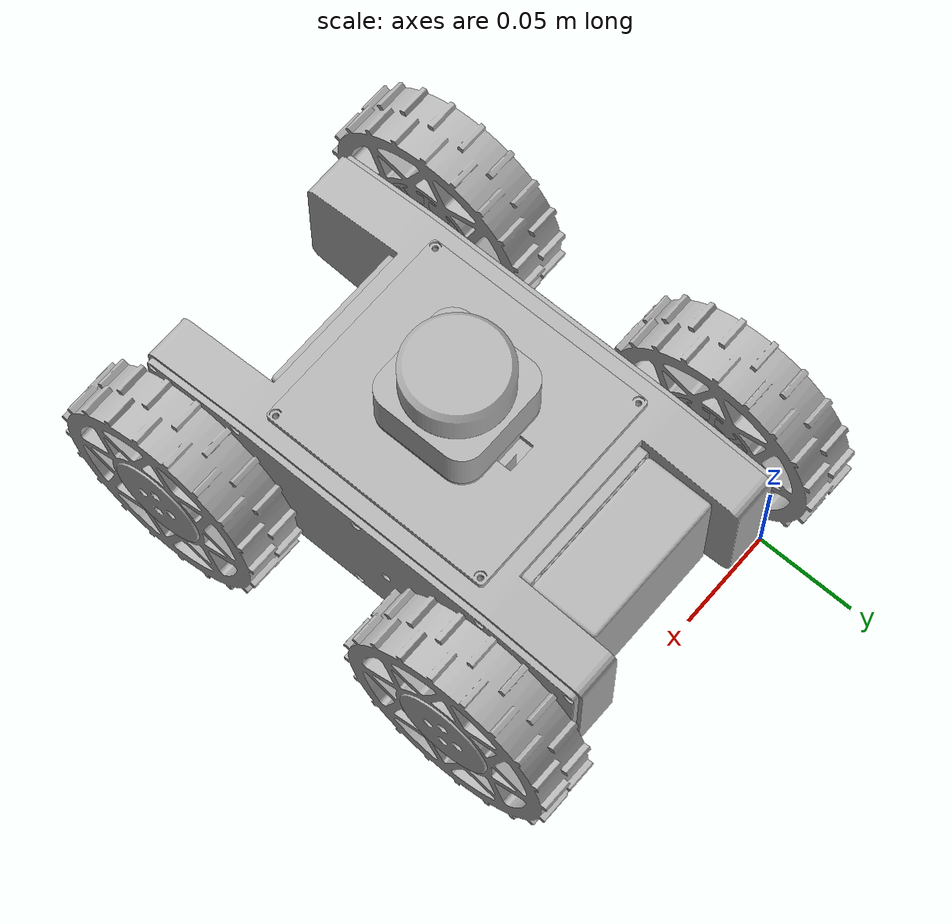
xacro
<?xml version="1.0" ?>
<robot name="tankbot" xmlns:xacro="http://www.ros.org/wiki/xacro">

<xacro:include filename="$(find tankbot_description)/urdf/materials.xacro" />
<xacro:include filename="$(find tankbot_description)/urdf/tankbot.trans" />
<xacro:include filename="$(find tankbot_description)/urdf/tankbot.gazebo" />
<link name="base_link">
  <inertial>
    <origin xyz="0.061966846190393096 -0.11988994757593131 0.028748806657344462" rpy="0 0 0"/>
    <mass value="0.3789190138102293"/>
    <inertia ixx="0.002157" iyy="0.000953" izz="0.002613" ixy="1.6e-05" iyz="1e-06" ixz="1e-06"/>
  </inertial>
  <visual>
    <origin xyz="0 0 0" rpy="0 0 0"/>
    <geometry>
      <mesh filename="package://tankbot_description/meshes/base_link.stl" scale="0.001 0.001 0.001"/>
    </geometry>
    <material name="silver"/>
  </visual>
  <collision>
    <origin xyz="0 0 0" rpy="0 0 0"/>
    <geometry>
      <mesh filename="package://tankbot_description/meshes/base_link.stl" scale="0.001 0.001 0.001"/>
    </geometry>
  </collision>
</link>

<link name="front_plate_1">
  <inertial>
    <origin xyz="0.03400026234554328 -0.0015616643301978317 -0.028819631022657312" rpy="0 0 0"/>
    <mass value="0.015210773513562193"/>
    <inertia ixx="6e-06" iyy="1.3e-05" izz="7e-06" ixy="-0.0" iyz="-0.0" ixz="0.0"/>
  </inertial>
  <visual>
    <origin xyz="-0.0285 0.1875 -0.063831" rpy="0 0 0"/>
    <geometry>
      <mesh filename="package://tankbot_description/meshes/front_plate_1.stl" scale="0.001 0.001 0.001"/>
    </geometry>
    <material name="silver"/>
  </visual>
  <collision>
    <origin xyz="-0.0285 0.1875 -0.063831" rpy="0 0 0"/>
    <geometry>
      <mesh filename="package://tankbot_description/meshes/front_plate_1.stl" scale="0.001 0.001 0.001"/>
    </geometry>
  </collision>
</link>

<link name="right_plate_1">
  <inertial>
    <origin xyz="-0.0016310334261048743 0.11502130001410846 -0.02545067187398748" rpy="0 0 0"/>
    <mass value="0.045339201727529144"/>
    <inertia ixx="0.000216" iyy="1.5e-05" izz="0.000201" ixy="-0.0" iyz="0.0" ixz="-0.0"/>
  </inertial>
  <visual>
    <origin xyz="-0.0 0.235 -0.060454" rpy="0 0 0"/>
    <geometry>
      <mesh filename="package://tankbot_description/meshes/right_plate_1.stl" scale="0.001 0.001 0.001"/>
    </geometry>
    <material name="silver"/>
  </visual>
  <collision>
    <origin xyz="-0.0 0.235 -0.060454" rpy="0 0 0"/>
    <geometry>
      <mesh filename="package://tankbot_description/meshes/right_plate_1.stl" scale="0.001 0.001 0.001"/>
    </geometry>
  </collision>
</link>

<link name="left_plate_1">
  <inertial>
    <origin xyz="0.001631034826506117 0.1149787017171648 -0.025450672518136173" rpy="0 0 0"/>
    <mass value="0.04533930280208076"/>
    <inertia ixx="0.000216" iyy="1.5e-05" izz="0.000201" ixy="-0.0" iyz="-0.0" ixz="0.0"/>
  </inertial>
  <visual>
    <origin xyz="-0.125 0.235 -0.060454" rpy="0 0 0"/>
    <geometry>
      <mesh filename="package://tankbot_description/meshes/left_plate_1.stl" scale="0.001 0.001 0.001"/>
    </geometry>
    <material name="silver"/>
  </visual>
  <collision>
    <origin xyz="-0.125 0.235 -0.060454" rpy="0 0 0"/>
    <geometry>
      <mesh filename="package://tankbot_description/meshes/left_plate_1.stl" scale="0.001 0.001 0.001"/>
    </geometry>
  </collision>
</link>

<link name="battery_plate_1">
  <inertial>
    <origin xyz="-0.03734181517226223 0.002573524497070788 -0.02875877605555257" rpy="0 0 0"/>
    <mass value="0.021493243945547247"/>
    <inertia ixx="7e-06" iyy="1.6e-05" izz="9e-06" ixy="0.0" iyz="0.0" ixz="-0.0"/>
  </inertial>
  <visual>
    <origin xyz="-0.0965 0.0525 -0.063831" rpy="0 0 0"/>
    <geometry>
      <mesh filename="package://tankbot_description/meshes/battery_plate_1.stl" scale="0.001 0.001 0.001"/>
    </geometry>
    <material name="silver"/>
  </visual>
  <collision>
    <origin xyz="-0.0965 0.0525 -0.063831" rpy="0 0 0"/>
    <geometry>
      <mesh filename="package://tankbot_description/meshes/battery_plate_1.stl" scale="0.001 0.001 0.001"/>
    </geometry>
  </collision>
</link>

<link name="battery_1">
  <inertial>
    <origin xyz="5.551115123125783e-17 0.017500000000000016 6.938893903907228e-18" rpy="0 0 0"/>
    <mass value="0.9436366859853663"/>
    <inertia ixx="0.000359" iyy="0.000734" izz="0.000566" ixy="0.0" iyz="0.0" ixz="0.0"/>
  </inertial>
  <visual>
    <origin xyz="-0.0625 0.0475 -0.035" rpy="0 0 0"/>
    <geometry>
      <mesh filename="package://tankbot_description/meshes/battery_1.stl" scale="0.001 0.001 0.001"/>
    </geometry>
    <material name="silver"/>
  </visual>
  <collision>
    <origin xyz="-0.0625 0.0475 -0.035" rpy="0 0 0"/>
    <geometry>
      <mesh filename="package://tankbot_description/meshes/battery_1.stl" scale="0.001 0.001 0.001"/>
    </geometry>
  </collision>
</link>

<link name="lidar_plate_1">
  <inertial>
    <origin xyz="-0.05146361197627055 0.05601833323489462 0.001911310443752437" rpy="0 0 0"/>
    <mass value="0.044779162933929396"/>
    <inertia ixx="4.6e-05" iyy="3.9e-05" izz="8.5e-05" ixy="-0.0" iyz="0.0" ixz="-0.0"/>
  </inertial>
  <visual>
    <origin xyz="-0.113961 0.176182 -0.07" rpy="0 0 0"/>
    <geometry>
      <mesh filename="package://tankbot_description/meshes/lidar_plate_1.stl" scale="0.001 0.001 0.001"/>
    </geometry>
    <material name="silver"/>
  </visual>
  <collision>
    <origin xyz="-0.113961 0.176182 -0.07" rpy="0 0 0"/>
    <geometry>
      <mesh filename="package://tankbot_description/meshes/lidar_plate_1.stl" scale="0.001 0.001 0.001"/>
    </geometry>
  </collision>
</link>

<link name="wheel_axis_1">
  <inertial>
    <origin xyz="-0.004624999999999574 2.607081217576024e-13 9.020562075079397e-17" rpy="0 0 0"/>
    <mass value="0.002186843011209861"/>
    <inertia ixx="0.0" iyy="0.0" izz="0.0" ixy="-0.0" iyz="-0.0" ixz="0.0"/>
  </inertial>
  <visual>
    <origin xyz="-0.1295 0.2 -0.035" rpy="0 0 0"/>
    <geometry>
      <mesh filename="package://tankbot_description/meshes/wheel_axis_1.stl" scale="0.001 0.001 0.001"/>
    </geometry>
    <material name="silver"/>
  </visual>
  <collision>
    <origin xyz="-0.1295 0.2 -0.035" rpy="0 0 0"/>
    <geometry>
      <mesh filename="package://tankbot_description/meshes/wheel_axis_1.stl" scale="0.001 0.001 0.001"/>
    </geometry>
  </collision>
</link>

<link name="axis_connector_1">
  <inertial>
    <origin xyz="-0.0037832205362184623 -2.4980018054066022e-15 -1.3877787807814457e-17" rpy="0 0 0"/>
    <mass value="0.0034286186333100147"/>
    <inertia ixx="0.0" iyy="0.0" izz="0.0" ixy="0.0" iyz="0.0" ixz="-0.0"/>
  </inertial>
  <visual>
    <origin xyz="-0.1455 0.2 -0.035" rpy="0 0 0"/>
    <geometry>
      <mesh filename="package://tankbot_description/meshes/axis_connector_1.stl" scale="0.001 0.001 0.001"/>
    </geometry>
    <material name="silver"/>
  </visual>
  <collision>
    <origin xyz="-0.1455 0.2 -0.035" rpy="0 0 0"/>
    <geometry>
      <mesh filename="package://tankbot_description/meshes/axis_connector_1.stl" scale="0.001 0.001 0.001"/>
    </geometry>
  </collision>
</link>

<link name="wheel_1">
  <inertial>
    <origin xyz="0.007379216067521871 2.0761170560490427e-14 -1.2934098236883074e-14" rpy="0 0 0"/>
    <mass value="0.02707353948767036"/>
    <inertia ixx="7e-06" iyy="5e-06" izz="5e-06" ixy="-0.0" iyz="-0.0" ixz="-0.0"/>
  </inertial>
  <visual>
    <origin xyz="-0.1455 0.2 -0.035" rpy="0 0 0"/>
    <geometry>
      <mesh filename="package://tankbot_description/meshes/wheel_1.stl" scale="0.001 0.001 0.001"/>
    </geometry>
    <material name="silver"/>
  </visual>
  <collision>
    <origin xyz="-0.1455 0.2 -0.035" rpy="0 0 0"/>
    <geometry>
      <mesh filename="package://tankbot_description/meshes/wheel_1.stl" scale="0.001 0.001 0.001"/>
    </geometry>
  </collision>
</link>

<link name="wheel_axis_2">
  <inertial>
    <origin xyz="-0.004624999999999602 2.6105506645279775e-13 -7.7021722333370235e-16" rpy="0 0 0"/>
    <mass value="0.002186843011209861"/>
    <inertia ixx="0.0" iyy="0.0" izz="0.0" ixy="-0.0" iyz="-0.0" ixz="0.0"/>
  </inertial>
  <visual>
    <origin xyz="-0.1295 0.04 -0.035" rpy="0 0 0"/>
    <geometry>
      <mesh filename="package://tankbot_description/meshes/wheel_axis_2.stl" scale="0.001 0.001 0.001"/>
    </geometry>
    <material name="silver"/>
  </visual>
  <collision>
    <origin xyz="-0.1295 0.04 -0.035" rpy="0 0 0"/>
    <geometry>
      <mesh filename="package://tankbot_description/meshes/wheel_axis_2.stl" scale="0.001 0.001 0.001"/>
    </geometry>
  </collision>
</link>

<link name="axis_connector_2">
  <inertial>
    <origin xyz="-0.003783220536218518 -2.1649348980190553e-15 -8.743006318923108e-16" rpy="0 0 0"/>
    <mass value="0.0034286186333100147"/>
    <inertia ixx="0.0" iyy="0.0" izz="0.0" ixy="0.0" iyz="0.0" ixz="-0.0"/>
  </inertial>
  <visual>
    <origin xyz="-0.1455 0.04 -0.035" rpy="0 0 0"/>
    <geometry>
      <mesh filename="package://tankbot_description/meshes/axis_connector_2.stl" scale="0.001 0.001 0.001"/>
    </geometry>
    <material name="silver"/>
  </visual>
  <collision>
    <origin xyz="-0.1455 0.04 -0.035" rpy="0 0 0"/>
    <geometry>
      <mesh filename="package://tankbot_description/meshes/axis_connector_2.stl" scale="0.001 0.001 0.001"/>
    </geometry>
  </collision>
</link>

<link name="wheel_2">
  <inertial>
    <origin xyz="0.00737921606752176 2.0816681711721685e-14 -0.008000000000015904" rpy="0 0 0"/>
    <mass value="0.02707353948767036"/>
    <inertia ixx="7e-06" iyy="5e-06" izz="5e-06" ixy="-0.0" iyz="-0.0" ixz="-0.0"/>
  </inertial>
  <visual>
    <origin xyz="-0.1455 0.04 -0.043" rpy="0 0 0"/>
    <geometry>
      <mesh filename="package://tankbot_description/meshes/wheel_2.stl" scale="0.001 0.001 0.001"/>
    </geometry>
    <material name="silver"/>
  </visual>
  <collision>
    <origin xyz="-0.1455 0.04 -0.043" rpy="0 0 0"/>
    <geometry>
      <mesh filename="package://tankbot_description/meshes/wheel_2.stl" scale="0.001 0.001 0.001"/>
    </geometry>
  </collision>
</link>

<link name="tire_2">
  <inertial>
    <origin xyz="0.015000000000000235 -2.1510571102112408e-16 -0.02322100000000306" rpy="0 0 0"/>
    <mass value="0.14208029316988524"/>
    <inertia ixx="0.000233" iyy="0.000127" izz="0.000127" ixy="-0.0" iyz="-0.0" ixz="0.0"/>
  </inertial>
  <visual>
    <origin xyz="-0.1355 0.04 -0.058221" rpy="0 0 0"/>
    <geometry>
      <mesh filename="package://tankbot_description/meshes/tire_2.stl" scale="0.001 0.001 0.001"/>
    </geometry>
    <material name="silver"/>
  </visual>
  <collision>
    <origin xyz="-0.1355 0.04 -0.058221" rpy="0 0 0"/>
    <geometry>
      <mesh filename="package://tankbot_description/meshes/tire_2.stl" scale="0.001 0.001 0.001"/>
    </geometry>
  </collision>
</link>

<link name="wheel_3">
  <inertial>
    <origin xyz="-0.00737921606752185 -2.045585922871851e-14 -0.008000000000014912" rpy="0 0 0"/>
    <mass value="0.02707353948767036"/>
    <inertia ixx="7e-06" iyy="5e-06" izz="5e-06" ixy="-0.0" iyz="0.0" ixz="0.0"/>
  </inertial>
  <visual>
    <origin xyz="0.0205 0.2 -0.043" rpy="0 0 0"/>
    <geometry>
      <mesh filename="package://tankbot_description/meshes/wheel_3.stl" scale="0.001 0.001 0.001"/>
    </geometry>
    <material name="silver"/>
  </visual>
  <collision>
    <origin xyz="0.0205 0.2 -0.043" rpy="0 0 0"/>
    <geometry>
      <mesh filename="package://tankbot_description/meshes/wheel_3.stl" scale="0.001 0.001 0.001"/>
    </geometry>
  </collision>
</link>

<link name="wheel_4">
  <inertial>
    <origin xyz="-0.00737921606752185 -2.0462798122622416e-14 -0.008000000000015044" rpy="0 0 0"/>
    <mass value="0.02707353948767036"/>
    <inertia ixx="7e-06" iyy="5e-06" izz="5e-06" ixy="-0.0" iyz="0.0" ixz="0.0"/>
  </inertial>
  <visual>
    <origin xyz="0.0205 0.04 -0.043" rpy="0 0 0"/>
    <geometry>
      <mesh filename="package://tankbot_description/meshes/wheel_4.stl" scale="0.001 0.001 0.001"/>
    </geometry>
    <material name="silver"/>
  </visual>
  <collision>
    <origin xyz="0.0205 0.04 -0.043" rpy="0 0 0"/>
    <geometry>
      <mesh filename="package://tankbot_description/meshes/wheel_4.stl" scale="0.001 0.001 0.001"/>
    </geometry>
  </collision>
</link>

<link name="tire_3">
  <inertial>
    <origin xyz="-0.015000000000000345 6.38378239159465e-16 -0.023221000000002122" rpy="0 0 0"/>
    <mass value="0.14208029316988524"/>
    <inertia ixx="0.000233" iyy="0.000127" izz="0.000127" ixy="-0.0" iyz="0.0" ixz="-0.0"/>
  </inertial>
  <visual>
    <origin xyz="0.0105 0.04 -0.058221" rpy="0 0 0"/>
    <geometry>
      <mesh filename="package://tankbot_description/meshes/tire_3.stl" scale="0.001 0.001 0.001"/>
    </geometry>
    <material name="silver"/>
  </visual>
  <collision>
    <origin xyz="0.0105 0.04 -0.058221" rpy="0 0 0"/>
    <geometry>
      <mesh filename="package://tankbot_description/meshes/tire_3.stl" scale="0.001 0.001 0.001"/>
    </geometry>
  </collision>
</link>

<link name="tire_4">
  <inertial>
    <origin xyz="-0.015000000000000345 5.828670879282072e-16 -0.023221000000001976" rpy="0 0 0"/>
    <mass value="0.14208029316988524"/>
    <inertia ixx="0.000233" iyy="0.000127" izz="0.000127" ixy="-0.0" iyz="0.0" ixz="-0.0"/>
  </inertial>
  <visual>
    <origin xyz="0.0105 0.2 -0.058221" rpy="0 0 0"/>
    <geometry>
      <mesh filename="package://tankbot_description/meshes/tire_4.stl" scale="0.001 0.001 0.001"/>
    </geometry>
    <material name="silver"/>
  </visual>
  <collision>
    <origin xyz="0.0105 0.2 -0.058221" rpy="0 0 0"/>
    <geometry>
      <mesh filename="package://tankbot_description/meshes/tire_4.stl" scale="0.001 0.001 0.001"/>
    </geometry>
  </collision>
</link>

<link name="tire_1">
  <inertial>
    <origin xyz="0.015000000000000346 -2.7755575615628914e-16 -0.023221000000000082" rpy="0 0 0"/>
    <mass value="0.14208029316988524"/>
    <inertia ixx="0.000233" iyy="0.000127" izz="0.000127" ixy="-0.0" iyz="-0.0" ixz="0.0"/>
  </inertial>
  <visual>
    <origin xyz="-0.1355 0.2 -0.058221" rpy="0 0 0"/>
    <geometry>
      <mesh filename="package://tankbot_description/meshes/tire_1.stl" scale="0.001 0.001 0.001"/>
    </geometry>
    <material name="silver"/>
  </visual>
  <collision>
    <origin xyz="-0.1355 0.2 -0.058221" rpy="0 0 0"/>
    <geometry>
      <mesh filename="package://tankbot_description/meshes/tire_1.stl" scale="0.001 0.001 0.001"/>
    </geometry>
  </collision>
</link>

<link name="DC_12V_421rpm_motor_1">
  <inertial>
    <origin xyz="-0.04283979402714558 1.8729137864492706e-06 1.8753426576888221e-06" rpy="0 0 0"/>
    <mass value="0.18854507462767076"/>
    <inertia ixx="2.3e-05" iyy="0.000143" izz="0.000143" ixy="-0.0" iyz="0.0" ixz="-0.0"/>
  </inertial>
  <visual>
    <origin xyz="-0.1005 0.163 -0.0185" rpy="0 0 0"/>
    <geometry>
      <mesh filename="package://tankbot_description/meshes/DC_12V_421rpm_motor_1.stl" scale="0.001 0.001 0.001"/>
    </geometry>
    <material name="silver"/>
  </visual>
  <collision>
    <origin xyz="-0.1005 0.163 -0.0185" rpy="0 0 0"/>
    <geometry>
      <mesh filename="package://tankbot_description/meshes/DC_12V_421rpm_motor_1.stl" scale="0.001 0.001 0.001"/>
    </geometry>
  </collision>
</link>

<link name="DC_12V_421rpm_motor_2">
  <inertial>
    <origin xyz="0.04283979402714507 -1.1474023120516819e-09 2.6521350333860716e-06" rpy="0 0 0"/>
    <mass value="0.18854507462767076"/>
    <inertia ixx="2.3e-05" iyy="0.000143" izz="0.000143" ixy="-0.0" iyz="0.0" ixz="0.0"/>
  </inertial>
  <visual>
    <origin xyz="-0.0245 0.077 -0.0185" rpy="0 0 0"/>
    <geometry>
      <mesh filename="package://tankbot_description/meshes/DC_12V_421rpm_motor_2.stl" scale="0.001 0.001 0.001"/>
    </geometry>
    <material name="silver"/>
  </visual>
  <collision>
    <origin xyz="-0.0245 0.077 -0.0185" rpy="0 0 0"/>
    <geometry>
      <mesh filename="package://tankbot_description/meshes/DC_12V_421rpm_motor_2.stl" scale="0.001 0.001 0.001"/>
    </geometry>
  </collision>
</link>

<link name="wheel_axis_4">
  <inertial>
    <origin xyz="-0.020624999999999796 2.6087465521129616e-13 2.220446049250313e-16" rpy="0 0 0"/>
    <mass value="0.002186843011209861"/>
    <inertia ixx="0.0" iyy="0.0" izz="0.0" ixy="-0.0" iyz="-0.0" ixz="0.0"/>
  </inertial>
  <visual>
    <origin xyz="-0.02075 0.2 -0.035" rpy="0 0 0"/>
    <geometry>
      <mesh filename="package://tankbot_description/meshes/wheel_axis_4.stl" scale="0.001 0.001 0.001"/>
    </geometry>
    <material name="silver"/>
  </visual>
  <collision>
    <origin xyz="-0.02075 0.2 -0.035" rpy="0 0 0"/>
    <geometry>
      <mesh filename="package://tankbot_description/meshes/wheel_axis_4.stl" scale="0.001 0.001 0.001"/>
    </geometry>
  </collision>
</link>

<link name="wheel_axis_3">
  <inertial>
    <origin xyz="-0.020624999999999796 2.609093496808157e-13 9.71445146547012e-17" rpy="0 0 0"/>
    <mass value="0.002186843011209861"/>
    <inertia ixx="0.0" iyy="0.0" izz="0.0" ixy="-0.0" iyz="-0.0" ixz="0.0"/>
  </inertial>
  <visual>
    <origin xyz="-0.02075 0.04 -0.035" rpy="0 0 0"/>
    <geometry>
      <mesh filename="package://tankbot_description/meshes/wheel_axis_3.stl" scale="0.001 0.001 0.001"/>
    </geometry>
    <material name="silver"/>
  </visual>
  <collision>
    <origin xyz="-0.02075 0.04 -0.035" rpy="0 0 0"/>
    <geometry>
      <mesh filename="package://tankbot_description/meshes/wheel_axis_3.stl" scale="0.001 0.001 0.001"/>
    </geometry>
  </collision>
</link>

<link name="axis_connector_4">
  <inertial>
    <origin xyz="0.003783220536218466 2.525757381022231e-15 -6.938893903907228e-18" rpy="0 0 0"/>
    <mass value="0.0034286186333100147"/>
    <inertia ixx="0.0" iyy="0.0" izz="0.0" ixy="0.0" iyz="-0.0" ixz="0.0"/>
  </inertial>
  <visual>
    <origin xyz="0.0205 0.04 -0.035" rpy="0 0 0"/>
    <geometry>
      <mesh filename="package://tankbot_description/meshes/axis_connector_4.stl" scale="0.001 0.001 0.001"/>
    </geometry>
    <material name="silver"/>
  </visual>
  <collision>
    <origin xyz="0.0205 0.04 -0.035" rpy="0 0 0"/>
    <geometry>
      <mesh filename="package://tankbot_description/meshes/axis_connector_4.stl" scale="0.001 0.001 0.001"/>
    </geometry>
  </collision>
</link>

<link name="axis_connector_3">
  <inertial>
    <origin xyz="0.003783220536218466 2.4980018054066022e-15 1.1796119636642288e-16" rpy="0 0 0"/>
    <mass value="0.0034286186333100147"/>
    <inertia ixx="0.0" iyy="0.0" izz="0.0" ixy="0.0" iyz="-0.0" ixz="0.0"/>
  </inertial>
  <visual>
    <origin xyz="0.0205 0.2 -0.035" rpy="0 0 0"/>
    <geometry>
      <mesh filename="package://tankbot_description/meshes/axis_connector_3.stl" scale="0.001 0.001 0.001"/>
    </geometry>
    <material name="silver"/>
  </visual>
  <collision>
    <origin xyz="0.0205 0.2 -0.035" rpy="0 0 0"/>
    <geometry>
      <mesh filename="package://tankbot_description/meshes/axis_connector_3.stl" scale="0.001 0.001 0.001"/>
    </geometry>
  </collision>
</link>

<link name="jetson_socket_1">
  <inertial>
    <origin xyz="0.01517810020848679 0.024413686300538348 0.0020584155726718" rpy="0 0 0"/>
    <mass value="0.005389997737117132"/>
    <inertia ixx="4e-06" iyy="2e-06" izz="6e-06" ixy="-0.0" iyz="-0.0" ixz="0.0"/>
  </inertial>
  <visual>
    <origin xyz="-0.05479 0.142 -0.035" rpy="0 0 0"/>
    <geometry>
      <mesh filename="package://tankbot_description/meshes/jetson_socket_1.stl" scale="0.001 0.001 0.001"/>
    </geometry>
    <material name="silver"/>
  </visual>
  <collision>
    <origin xyz="-0.05479 0.142 -0.035" rpy="0 0 0"/>
    <geometry>
      <mesh filename="package://tankbot_description/meshes/jetson_socket_1.stl" scale="0.001 0.001 0.001"/>
    </geometry>
  </collision>
</link>

<link name="Jetson_Nano_Developer_Kit_1">
  <inertial>
    <origin xyz="0.02875976275966966 0.04306402367025662 0.01147816369811254" rpy="0 0 0"/>
    <mass value="0.6342806059346726"/>
    <inertia ixx="0.000331" iyy="0.000382" izz="0.000627" ixy="7e-06" iyz="-5e-06" ixz="-3e-05"/>
  </inertial>
  <visual>
    <origin xyz="-0.03975 0.16125 -0.041" rpy="0 0 0"/>
    <geometry>
      <mesh filename="package://tankbot_description/meshes/Jetson_Nano_Developer_Kit_1.stl" scale="0.001 0.001 0.001"/>
    </geometry>
    <material name="silver"/>
  </visual>
  <collision>
    <origin xyz="-0.03975 0.16125 -0.041" rpy="0 0 0"/>
    <geometry>
      <mesh filename="package://tankbot_description/meshes/Jetson_Nano_Developer_Kit_1.stl" scale="0.001 0.001 0.001"/>
    </geometry>
  </collision>
</link>

<link name="RPLIDAR_C1_1">
  <inertial>
    <origin xyz="8.326672684688674e-17 0.0 0.011622347913837539" rpy="0 0 0"/>
    <mass value="0.4236926119504609"/>
    <inertia ixx="0.000124" iyy="0.000124" izz="0.000209" ixy="0.0" iyz="0.0" ixz="0.0"/>
  </inertial>
  <visual>
    <origin xyz="-0.0625 0.12 -0.075" rpy="0 0 0"/>
    <geometry>
      <mesh filename="package://tankbot_description/meshes/RPLIDAR_C1_1.stl" scale="0.001 0.001 0.001"/>
    </geometry>
    <material name="silver"/>
  </visual>
  <collision>
    <origin xyz="-0.0625 0.12 -0.075" rpy="0 0 0"/>
    <geometry>
      <mesh filename="package://tankbot_description/meshes/RPLIDAR_C1_1.stl" scale="0.001 0.001 0.001"/>
    </geometry>
  </collision>
</link>

<link name="Component38_1">
  <inertial>
    <origin xyz="-6.938893903907228e-18 1.3877787807814457e-17 0.008888960581886457" rpy="0 0 0"/>
    <mass value="0.20990780389424532"/>
    <inertia ixx="3.8e-05" iyy="3.8e-05" izz="6.5e-05" ixy="0.0" iyz="0.0" ixz="0.0"/>
  </inertial>
  <visual>
    <origin xyz="-0.0625 0.12 -0.0983" rpy="0 0 0"/>
    <geometry>
      <mesh filename="package://tankbot_description/meshes/Component38_1.stl" scale="0.001 0.001 0.001"/>
    </geometry>
    <material name="silver"/>
  </visual>
  <collision>
    <origin xyz="-0.0625 0.12 -0.0983" rpy="0 0 0"/>
    <geometry>
      <mesh filename="package://tankbot_description/meshes/Component38_1.stl" scale="0.001 0.001 0.001"/>
    </geometry>
  </collision>
</link>

<joint name="Rigid 2" type="fixed">
  <origin xyz="0.0285 -0.1875 0.063831" rpy="0 0 0"/>
  <parent link="base_link"/>
  <child link="front_plate_1"/>
</joint>

<joint name="Rigid 4" type="fixed">
  <origin xyz="0.0 -0.235 0.060454" rpy="0 0 0"/>
  <parent link="base_link"/>
  <child link="right_plate_1"/>
</joint>

<joint name="Rigid 5" type="fixed">
  <origin xyz="0.125 -0.235 0.060454" rpy="0 0 0"/>
  <parent link="base_link"/>
  <child link="left_plate_1"/>
</joint>

<joint name="Rigid 7" type="fixed">
  <origin xyz="0.0965 -0.0525 0.063831" rpy="0 0 0"/>
  <parent link="base_link"/>
  <child link="battery_plate_1"/>
</joint>

<joint name="Rigid 9" type="fixed">
  <origin xyz="-0.034 0.005 -0.028831" rpy="0 0 0"/>
  <parent link="battery_plate_1"/>
  <child link="battery_1"/>
</joint>

<joint name="Rigid 10" type="fixed">
  <origin xyz="0.113961 -0.176182 0.07" rpy="0 0 0"/>
  <parent link="base_link"/>
  <child link="lidar_plate_1"/>
</joint>

<joint name="Revolute 11" type="continuous">
  <origin xyz="0.0045 0.035 -0.025454" rpy="0 0 0"/>
  <parent link="left_plate_1"/>
  <child link="wheel_axis_1"/>
  <axis xyz="1.0 0.0 0.0"/>
</joint>

<joint name="Rigid 12" type="fixed">
  <origin xyz="0.016 0.0 0.0" rpy="0 0 0"/>
  <parent link="wheel_axis_1"/>
  <child link="axis_connector_1"/>
</joint>

<joint name="Rigid 15" type="fixed">
  <origin xyz="0.0 0.0 0.0" rpy="0 0 0"/>
  <parent link="axis_connector_1"/>
  <child link="wheel_1"/>
</joint>

<joint name="Revolute 16" type="continuous">
  <origin xyz="0.0045 0.195 -0.025454" rpy="0 0 0"/>
  <parent link="left_plate_1"/>
  <child link="wheel_axis_2"/>
  <axis xyz="-1.0 -0.0 -0.0"/>
</joint>

<joint name="Rigid 17" type="fixed">
  <origin xyz="0.016 0.0 0.0" rpy="0 0 0"/>
  <parent link="wheel_axis_2"/>
  <child link="axis_connector_2"/>
</joint>

<joint name="Rigid 18" type="fixed">
  <origin xyz="0.0 0.0 0.008" rpy="0 0 0"/>
  <parent link="axis_connector_2"/>
  <child link="wheel_2"/>
</joint>

<joint name="Rigid 19" type="fixed">
  <origin xyz="-0.01 0.0 0.015221" rpy="0 0 0"/>
  <parent link="wheel_2"/>
  <child link="tire_2"/>
</joint>

<joint name="Rigid 24" type="fixed">
  <origin xyz="0.0 0.0 0.008" rpy="0 0 0"/>
  <parent link="axis_connector_3"/>
  <child link="wheel_3"/>
</joint>

<joint name="Rigid 25" type="fixed">
  <origin xyz="0.0 0.0 0.008" rpy="0 0 0"/>
  <parent link="axis_connector_4"/>
  <child link="wheel_4"/>
</joint>

<joint name="Rigid 26" type="fixed">
  <origin xyz="0.01 0.0 0.015221" rpy="0 0 0"/>
  <parent link="wheel_4"/>
  <child link="tire_3"/>
</joint>

<joint name="Rigid 27" type="fixed">
  <origin xyz="0.01 0.0 0.015221" rpy="0 0 0"/>
  <parent link="wheel_3"/>
  <child link="tire_4"/>
</joint>

<joint name="Rigid 28" type="fixed">
  <origin xyz="-0.01 0.0 0.023221" rpy="0 0 0"/>
  <parent link="wheel_1"/>
  <child link="tire_1"/>
</joint>

<joint name="Rigid 54" type="fixed">
  <origin xyz="0.1005 -0.163 0.0185" rpy="0 0 0"/>
  <parent link="base_link"/>
  <child link="DC_12V_421rpm_motor_1"/>
</joint>

<joint name="Rigid 55" type="fixed">
  <origin xyz="0.0245 -0.077 0.0185" rpy="0 0 0"/>
  <parent link="base_link"/>
  <child link="DC_12V_421rpm_motor_2"/>
</joint>

<joint name="Revolute 66" type="continuous">
  <origin xyz="0.02075 -0.2 0.035" rpy="0 0 0"/>
  <parent link="base_link"/>
  <child link="wheel_axis_4"/>
  <axis xyz="1.0 0.0 0.0"/>
</joint>

<joint name="Revolute 67" type="continuous">
  <origin xyz="0.02075 -0.04 0.035" rpy="0 0 0"/>
  <parent link="base_link"/>
  <child link="wheel_axis_3"/>
  <axis xyz="1.0 0.0 0.0"/>
</joint>

<joint name="Rigid 68" type="fixed">
  <origin xyz="-0.04125 0.0 0.0" rpy="0 0 0"/>
  <parent link="wheel_axis_3"/>
  <child link="axis_connector_4"/>
</joint>

<joint name="Rigid 69" type="fixed">
  <origin xyz="-0.04125 0.0 0.0" rpy="0 0 0"/>
  <parent link="wheel_axis_4"/>
  <child link="axis_connector_3"/>
</joint>

<joint name="Rigid 75" type="fixed">
  <origin xyz="0.05479 -0.142 0.035" rpy="0 0 0"/>
  <parent link="base_link"/>
  <child link="jetson_socket_1"/>
</joint>

<joint name="Rigid 76" type="fixed">
  <origin xyz="-0.01504 -0.01925 0.006" rpy="0 0 0"/>
  <parent link="jetson_socket_1"/>
  <child link="Jetson_Nano_Developer_Kit_1"/>
</joint>

<joint name="Rigid 83" type="fixed">
  <origin xyz="-0.051461 0.056182 0.005" rpy="0 0 0"/>
  <parent link="lidar_plate_1"/>
  <child link="RPLIDAR_C1_1"/>
</joint>

<joint name="Rigid 84" type="fixed">
  <origin xyz="0.0 0.0 0.0233" rpy="0 0 0"/>
  <parent link="RPLIDAR_C1_1"/>
  <child link="Component38_1"/>
</joint>

</robot>

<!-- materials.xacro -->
<robot name="tankbot" xmlns:xacro="http://www.ros.org/wiki/xacro" >

<material name="silver">
  <color rgba="0.700 0.700 0.700 1.000"/>
</material>

</robot>

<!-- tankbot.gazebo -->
<robot name="tankbot" xmlns:xacro="http://www.ros.org/wiki/xacro" >

<xacro:property name="body_color" value="Gazebo/Silver" />

<gazebo>
  <plugin name="control" filename="libgazebo_ros_control.so"/>
</gazebo>
<gazebo reference="base_link">
  <material>${body_color}</material>
  <mu1>0.2</mu1>
  <mu2>0.2</mu2>
  <selfCollide>true</selfCollide>
  <gravity>true</gravity>
</gazebo>

<gazebo reference="front_plate_1">
  <material>${body_color}</material>
  <mu1>0.2</mu1>
  <mu2>0.2</mu2>
  <selfCollide>true</selfCollide>
</gazebo>

<gazebo reference="right_plate_1">
  <material>${body_color}</material>
  <mu1>0.2</mu1>
  <mu2>0.2</mu2>
  <selfCollide>true</selfCollide>
</gazebo>

<gazebo reference="left_plate_1">
  <material>${body_color}</material>
  <mu1>0.2</mu1>
  <mu2>0.2</mu2>
  <selfCollide>true</selfCollide>
</gazebo>

<gazebo reference="battery_plate_1">
  <material>${body_color}</material>
  <mu1>0.2</mu1>
  <mu2>0.2</mu2>
  <selfCollide>true</selfCollide>
</gazebo>

<gazebo reference="battery_1">
  <material>Gazebo/Black</material>
  <mu1>0.2</mu1>
  <mu2>0.2</mu2>
  <selfCollide>true</selfCollide>
</gazebo>

<gazebo reference="lidar_plate_1">
  <material>${body_color}</material>
  <mu1>0.2</mu1>
  <mu2>0.2</mu2>
  <selfCollide>true</selfCollide>
</gazebo>

<gazebo reference="wheel_axis_1">
  <material>${body_color}</material>
  <mu1>0.2</mu1>
  <mu2>0.2</mu2>
  <selfCollide>true</selfCollide>
</gazebo>

<gazebo reference="axis_connector_1">
  <material>${body_color}</material>
  <mu1>0.2</mu1>
  <mu2>0.2</mu2>
  <selfCollide>true</selfCollide>
</gazebo>

<gazebo reference="wheel_1">
  <material>${body_color}</material>
  <mu1>0.2</mu1>
  <mu2>0.2</mu2>
  <selfCollide>true</selfCollide>
</gazebo>

<gazebo reference="wheel_axis_2">
  <material>${body_color}</material>
  <mu1>0.2</mu1>
  <mu2>0.2</mu2>
  <selfCollide>true</selfCollide>
</gazebo>

<gazebo reference="axis_connector_2">
  <material>${body_color}</material>
  <mu1>0.2</mu1>
  <mu2>0.2</mu2>
  <selfCollide>true</selfCollide>
</gazebo>

<gazebo reference="wheel_2">
  <material>${body_color}</material>
  <mu1>0.2</mu1>
  <mu2>0.2</mu2>
  <selfCollide>true</selfCollide>
</gazebo>

<gazebo reference="tire_2">
  <material>Gazebo/Black</material>
  <mu1>1500</mu1>
  <mu2>1500</mu2>
  <selfCollide>true</selfCollide>
</gazebo>

<gazebo reference="wheel_3">
  <material>${body_color}</material>
  <mu1>0.2</mu1>
  <mu2>0.2</mu2>
  <selfCollide>true</selfCollide>
</gazebo>

<gazebo reference="wheel_4">
  <material>${body_color}</material>
  <mu1>0.2</mu1>
  <mu2>0.2</mu2>
  <selfCollide>true</selfCollide>
</gazebo>

<gazebo reference="tire_3">
  <material>Gazebo/Black</material>
  <mu1>1500</mu1>
  <mu2>1500</mu2>
  <selfCollide>true</selfCollide>
</gazebo>

<gazebo reference="tire_4">
  <material>Gazebo/Black</material>
  <mu1>1500</mu1>
  <mu2>1500</mu2>
  <selfCollide>true</selfCollide>
</gazebo>

<gazebo reference="tire_1">
  <material>Gazebo/Black</material>
  <mu1>1500</mu1>
  <mu2>1500</mu2>
  <selfCollide>true</selfCollide>
</gazebo>

<gazebo reference="DC_12V_421rpm_motor_1">
  <material>${body_color}</material>
  <mu1>0.2</mu1>
  <mu2>0.2</mu2>
  <selfCollide>true</selfCollide>
</gazebo>

<gazebo reference="DC_12V_421rpm_motor_2">
  <material>${body_color}</material>
  <mu1>0.2</mu1>
  <mu2>0.2</mu2>
  <selfCollide>true</selfCollide>
</gazebo>

<gazebo reference="wheel_axis_4">
  <material>${body_color}</material>
  <mu1>0.2</mu1>
  <mu2>0.2</mu2>
  <selfCollide>true</selfCollide>
</gazebo>

<gazebo reference="wheel_axis_3">
  <material>${body_color}</material>
  <mu1>0.2</mu1>
  <mu2>0.2</mu2>
  <selfCollide>true</selfCollide>
</gazebo>

<gazebo reference="axis_connector_4">
  <material>${body_color}</material>
  <mu1>0.2</mu1>
  <mu2>0.2</mu2>
  <selfCollide>true</selfCollide>
</gazebo>

<gazebo reference="axis_connector_3">
  <material>${body_color}</material>
  <mu1>0.2</mu1>
  <mu2>0.2</mu2>
  <selfCollide>true</selfCollide>
</gazebo>

<gazebo reference="jetson_socket_1">
  <material>${body_color}</material>
  <mu1>0.2</mu1>
  <mu2>0.2</mu2>
  <selfCollide>true</selfCollide>
</gazebo>

<gazebo reference="Jetson_Nano_Developer_Kit_1">
  <material>${body_color}</material>
  <mu1>0.2</mu1>
  <mu2>0.2</mu2>
  <selfCollide>true</selfCollide>
</gazebo>

<gazebo reference="RPLIDAR_C1_1">
  <material>Gazebo/Black</material>
  <mu1>0.2</mu1>
  <mu2>0.2</mu2>
  <selfCollide>true</selfCollide>
</gazebo>

<gazebo reference="Component38_1">
  <material>Gazebo/Black</material>
  <mu1>0.2</mu1>
  <mu2>0.2</mu2>
  <selfCollide>true</selfCollide>
</gazebo>

<gazebo>
  <plugin name="differential_drive_controller" filename="libgazebo_ros_diff_drive.so">

    <!-- Plugin update rate in Hz -->
    <updateRate>${100}</updateRate>

    <!-- Name of left joint, defaults to `left_joint` -->
    <leftJoint>Revolute 11</leftJoint>

    <!-- Name of right joint, defaults to `right_joint` -->
    <rightJoint>Revolute 66</rightJoint>

    <!-- The distance from the center of one wheel to the other, in meters, defaults to 0.34 m -->
    <wheelSeparation>0.176</wheelSeparation>

    <!-- Diameter of the wheels, in meters, defaults to 0.15 m -->
    <wheelDiameter>0.105</wheelDiameter>

    <!-- Wheel acceleration, in rad/s^2, defaults to 0.0 rad/s^2 -->
    <wheelAcceleration>1.0</wheelAcceleration>

    <!-- Maximum torque which the wheels can produce, in Nm, defaults to 5 Nm -->
    <wheelTorque>100</wheelTorque>

    <!-- Topic to receive geometry_msgs/Twist message commands, defaults to `cmd_vel` -->
    <commandTopic>cmd_vel</commandTopic>

    <!-- Topic to publish nav_msgs/Odometry messages, defaults to `odom` -->
    <odometryTopic>odom</odometryTopic>

    <!-- Odometry frame, defaults to `odom` -->
    <odometryFrame>odom</odometryFrame>

    <!-- Robot frame to calculate odometry from, defaults to `base_footprint` -->
    <robotBaseFrame>base_link</robotBaseFrame>

    <!-- Odometry source, 0 for ENCODER, 1 for WORLD, defaults to WORLD -->
    <odometrySource>1</odometrySource>

    <!-- Set to true to publish transforms for the wheel links, defaults to false -->
    <publishWheelTF>true</publishWheelTF>

    <!-- Set to true to publish transforms for the odometry, defaults to true -->
    <publishOdom>true</publishOdom>

    <!-- Set to true to publish sensor_msgs/JointState on /joint_states for the wheel joints, defaults to false -->
    <publishWheelJointState>true</publishWheelJointState>

    <!-- Set to true to swap right and left wheels, defaults to true -->
    <legacyMode>false</legacyMode>
  </plugin>

</gazebo>

 <!-- hokuyo -->
  <gazebo reference="Component38_1">
    <sensor type="gpu_ray" name="head_hokuyo_sensor">
      <pose>0 0 0 0 0 0</pose>
      <visualize>false</visualize>
      <update_rate>40</update_rate>
      <ray>
        <scan>
          <horizontal>
            <samples>720</samples>
            <resolution>1</resolution>
            <min_angle>-3.14</min_angle>
            <max_angle>3.14</max_angle>
          </horizontal>
        </scan>
        <range>
          <min>0.10</min>
          <max>30.0</max>
          <resolution>0.01</resolution>
        </range>
        <noise>
          <type>gaussian</type>
          <mean>0.0</mean>
          <stddev>0.01</stddev>
        </noise>
      </ray>
      <plugin name="gazebo_ros_head_hokuyo_controller" filename="libgazebo_ros_gpu_laser.so">
        <topicName>/scan</topicName>
        <frameName>RPLIDAR_C1_1</frameName>
      </plugin>
    </sensor>
  </gazebo>
</robot>
